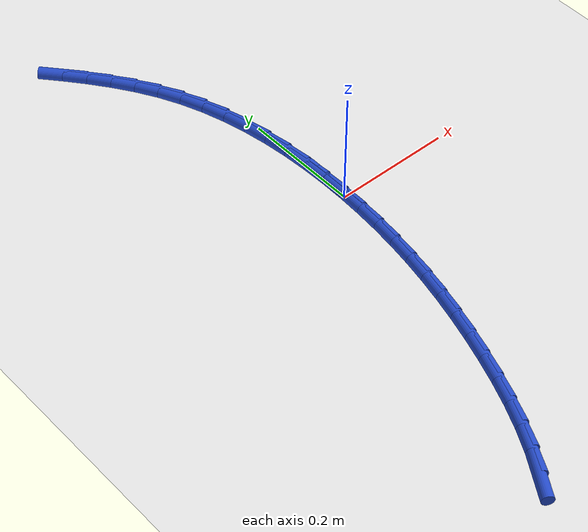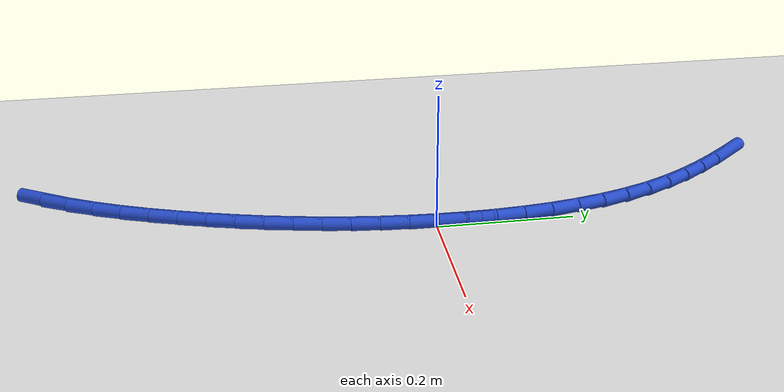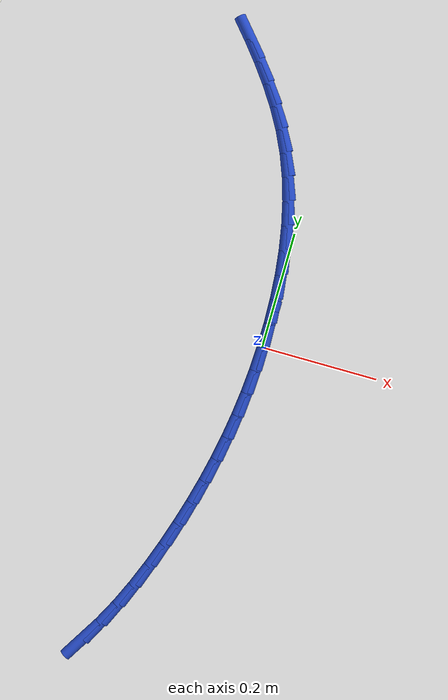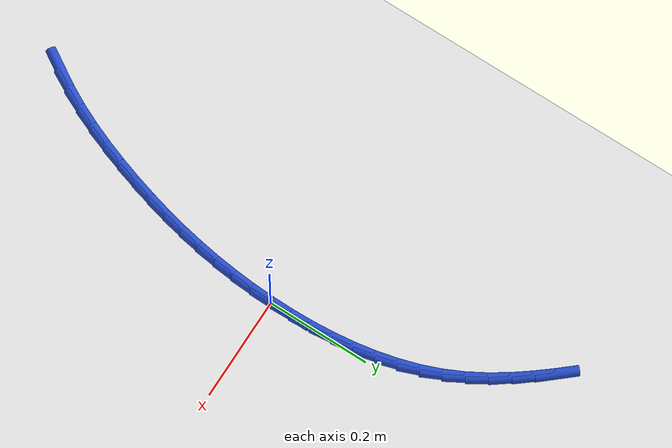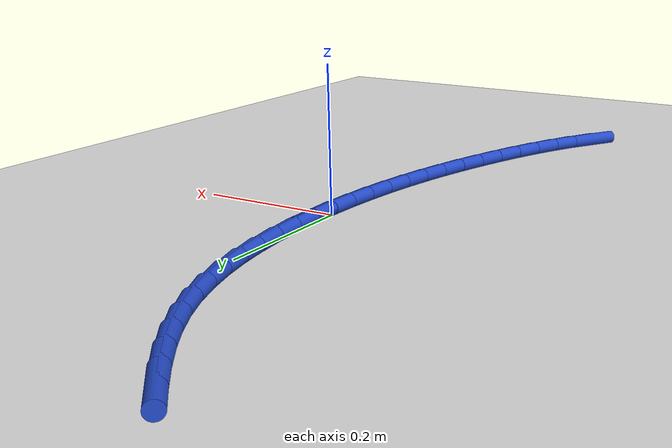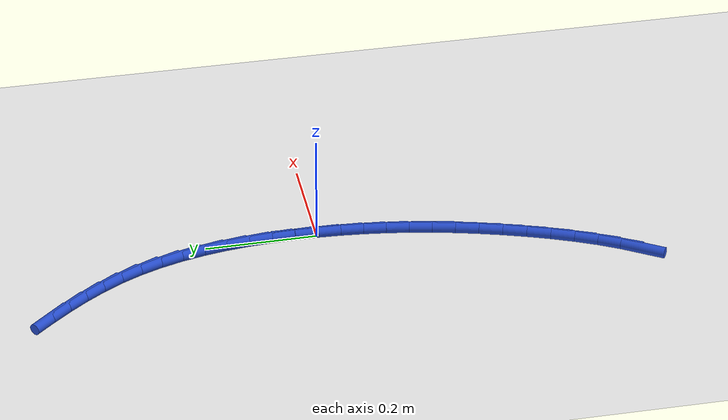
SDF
<sdf version="1.6">
 <world name="default">
  <model name="ground_plane">
   <static>1</static>
   <link name="link">
    <collision name="collision">
     <geometry><plane><normal>0 0 1</normal><size>100 100</size></plane></geometry>
     <surface><friction><ode><mu>100</mu><mu2>50</mu2></ode></friction></surface>
    </collision>
    <visual name="visual">
     <cast_shadows>0</cast_shadows>
     <geometry><plane><normal>0 0 1</normal><size>100 100</size></plane></geometry>
     <material>
      <script><uri>file://media/materials/scripts/gazebo.material</uri><name>Gazebo/WhiteGlow</name></script>
     </material>
    </visual>
   </link>
  </model>
  <model name="line">
   <link name="link_0">
    <pose>1.5612511283791264e-17 0.0 0.01 0 1.57 1.5627371519065834</pose>
    <collision name="collision">
     <geometry><cylinder><radius>0.01</radius><length>0.08</length></cylinder></geometry>
    </collision>
    <visual name="visual">
     <material>
      <script><name>Gazebo/Blue</name><uri>file://media/materials/scripts/gazebo.material</uri></script>
     </material>
     <geometry><cylinder><radius>0.01</radius><length>0.08</length></cylinder></geometry>
    </visual>
   </link>
   <link name="link_1">
    <pose>0.00033549583603010875 0.04162815389038797 0.01 0 1.57 -1.539648303344761</pose>
    <collision name="collision">
     <geometry><cylinder><radius>0.01</radius><length>0.08</length></cylinder></geometry>
    </collision>
    <visual name="visual">
     <material>
      <script><name>Gazebo/Blue</name><uri>file://media/materials/scripts/gazebo.material</uri></script>
     </material>
     <geometry><cylinder><radius>0.01</radius><length>0.08</length></cylinder></geometry>
    </visual>
   </link>
   <link name="link_2">
    <pose>-0.0009685561631910054 0.08348089757692105 0.01 0 1.57 -1.4964898001802398</pose>
    <collision name="collision">
     <geometry><cylinder><radius>0.01</radius><length>0.08</length></cylinder></geometry>
    </collision>
    <visual name="visual">
     <material>
      <script><name>Gazebo/Blue</name><uri>file://media/materials/scripts/gazebo.material</uri></script>
     </material>
     <geometry><cylinder><radius>0.01</radius><length>0.08</length></cylinder></geometry>
    </visual>
   </link>
   <link name="link_3">
    <pose>-0.0040824264526208645 0.12530948631201214 0.01 0 1.57 -1.4488233210434356</pose>
    <collision name="collision">
     <geometry><cylinder><radius>0.01</radius><length>0.08</length></cylinder></geometry>
    </collision>
    <visual name="visual">
     <material>
      <script><name>Gazebo/Blue</name><uri>file://media/materials/scripts/gazebo.material</uri></script>
     </material>
     <geometry><cylinder><radius>0.01</radius><length>0.08</length></cylinder></geometry>
    </visual>
   </link>
   <link name="link_4">
    <pose>-0.009176385487217007 0.1668651753480741 0.01 0 1.57 -1.3960528426665788</pose>
    <collision name="collision">
     <geometry><cylinder><radius>0.01</radius><length>0.08</length></cylinder></geometry>
    </collision>
    <visual name="visual">
     <material>
      <script><name>Gazebo/Blue</name><uri>file://media/materials/scripts/gazebo.material</uri></script>
     </material>
     <geometry><cylinder><radius>0.01</radius><length>0.08</length></cylinder></geometry>
    </visual>
   </link>
   <link name="link_5">
    <pose>-0.016420703721936963 0.20789921993751986 0.01 0 1.57 -1.337561754423011</pose>
    <collision name="collision">
     <geometry><cylinder><radius>0.01</radius><length>0.08</length></cylinder></geometry>
    </collision>
    <visual name="visual">
     <material>
      <script><name>Gazebo/Blue</name><uri>file://media/materials/scripts/gazebo.material</uri></script>
     </material>
     <geometry><cylinder><radius>0.01</radius><length>0.08</length></cylinder></geometry>
    </visual>
   </link>
   <link name="link_6">
    <pose>-0.02598565161173827 0.2481628753327622 0.01 0 1.57 -1.2727487935232362</pose>
    <collision name="collision">
     <geometry><cylinder><radius>0.01</radius><length>0.08</length></cylinder></geometry>
    </collision>
    <visual name="visual">
     <material>
      <script><name>Gazebo/Blue</name><uri>file://media/materials/scripts/gazebo.material</uri></script>
     </material>
     <geometry><cylinder><radius>0.01</radius><length>0.08</length></cylinder></geometry>
    </visual>
   </link>
   <link name="link_7">
    <pose>-0.03804149961157846 0.2874073967862142 0.01 0 1.57 -1.2010875529650897</pose>
    <collision name="collision">
     <geometry><cylinder><radius>0.01</radius><length>0.08</length></cylinder></geometry>
    </collision>
    <visual name="visual">
     <material>
      <script><name>Gazebo/Blue</name><uri>file://media/materials/scripts/gazebo.material</uri></script>
     </material>
     <geometry><cylinder><radius>0.01</radius><length>0.08</length></cylinder></geometry>
    </visual>
   </link>
   <link name="link_8">
    <pose>-0.0527585181764151 0.3253840395502886 0.01 0 1.57 -1.1226983405321613</pose>
    <collision name="collision">
     <geometry><cylinder><radius>0.01</radius><length>0.08</length></cylinder></geometry>
    </collision>
    <visual name="visual">
     <material>
      <script><name>Gazebo/Blue</name><uri>file://media/materials/scripts/gazebo.material</uri></script>
     </material>
     <geometry><cylinder><radius>0.01</radius><length>0.08</length></cylinder></geometry>
    </visual>
   </link>
   <link name="link_9">
    <pose>-0.0702916352839732 0.3618573117727762 0.01 0 1.57 -1.0466355568949675</pose>
    <collision name="collision">
     <geometry><cylinder><radius>0.01</radius><length>0.08</length></cylinder></geometry>
    </collision>
    <visual name="visual">
     <material>
      <script><name>Gazebo/Blue</name><uri>file://media/materials/scripts/gazebo.material</uri></script>
     </material>
     <geometry><cylinder><radius>0.01</radius><length>0.08</length></cylinder></geometry>
    </visual>
   </link>
   <link name="link_10">
    <pose>-0.09051286786912605 0.39683610133202285 0.01 0 1.57 -0.9815511545880734</pose>
    <collision name="collision">
     <geometry><cylinder><radius>0.01</radius><length>0.08</length></cylinder></geometry>
    </collision>
    <visual name="visual">
     <material>
      <script><name>Gazebo/Blue</name><uri>file://media/materials/scripts/gazebo.material</uri></script>
     </material>
     <geometry><cylinder><radius>0.01</radius><length>0.08</length></cylinder></geometry>
    </visual>
   </link>
   <link name="link_11">
    <pose>-0.11304546967218501 0.43054417878414664 0.01 0 1.57 -0.9281302438210409</pose>
    <collision name="collision">
     <geometry><cylinder><radius>0.01</radius><length>0.08</length></cylinder></geometry>
    </collision>
    <visual name="visual">
     <material>
      <script><name>Gazebo/Blue</name><uri>file://media/materials/scripts/gazebo.material</uri></script>
     </material>
     <geometry><cylinder><radius>0.01</radius><length>0.08</length></cylinder></geometry>
    </visual>
   </link>
   <link name="link_12">
    <pose>-0.13750421696907697 0.4632126375541121 0.01 0 1.57 -0.8863381538720599</pose>
    <collision name="collision">
     <geometry><cylinder><radius>0.01</radius><length>0.08</length></cylinder></geometry>
    </collision>
    <visual name="visual">
     <material>
      <script><name>Gazebo/Blue</name><uri>file://media/materials/scripts/gazebo.material</uri></script>
     </material>
     <geometry><cylinder><radius>0.01</radius><length>0.08</length></cylinder></geometry>
    </visual>
   </link>
   <link name="link_13">
    <pose>-0.16350388603572893 0.49507257106688396 0.01 0 1.57 -0.8559054106602573</pose>
    <collision name="collision">
     <geometry><cylinder><radius>0.01</radius><length>0.08</length></cylinder></geometry>
    </collision>
    <visual name="visual">
     <material>
      <script><name>Gazebo/Blue</name><uri>file://media/materials/scripts/gazebo.material</uri></script>
     </material>
     <geometry><cylinder><radius>0.01</radius><length>0.08</length></cylinder></geometry>
    </visual>
   </link>
   <link name="link_166">
    <pose>-0.15764988012076647 -0.5565780891741993 0.01 0 1.57 1.0183338912129576</pose>
    <collision name="collision">
     <geometry><cylinder><radius>0.01</radius><length>0.08</length></cylinder></geometry>
    </collision>
    <visual name="visual">
     <material>
      <script><name>Gazebo/Blue</name><uri>file://media/materials/scripts/gazebo.material</uri></script>
     </material>
     <geometry><cylinder><radius>0.01</radius><length>0.08</length></cylinder></geometry>
    </visual>
   </link>
   <link name="link_167">
    <pose>-0.13585304131474724 -0.5212222168888004 0.01 0 1.57 1.0852599736701192</pose>
    <collision name="collision">
     <geometry><cylinder><radius>0.01</radius><length>0.08</length></cylinder></geometry>
    </collision>
    <visual name="visual">
     <material>
      <script><name>Gazebo/Blue</name><uri>file://media/materials/scripts/gazebo.material</uri></script>
     </material>
     <geometry><cylinder><radius>0.01</radius><length>0.08</length></cylinder></geometry>
    </visual>
   </link>
   <link name="link_168">
    <pose>-0.11611062027643874 -0.4838077535075102 0.01 0 1.57 1.1413424869747353</pose>
    <collision name="collision">
     <geometry><cylinder><radius>0.01</radius><length>0.08</length></cylinder></geometry>
    </collision>
    <visual name="visual">
     <material>
      <script><name>Gazebo/Blue</name><uri>file://media/materials/scripts/gazebo.material</uri></script>
     </material>
     <geometry><cylinder><radius>0.01</radius><length>0.08</length></cylinder></geometry>
    </visual>
   </link>
   <link name="link_169">
    <pose>-0.09826740195748304 -0.44484537174377603 0.01 0 1.57 1.1881499630543153</pose>
    <collision name="collision">
     <geometry><cylinder><radius>0.01</radius><length>0.08</length></cylinder></geometry>
    </collision>
    <visual name="visual">
     <material>
      <script><name>Gazebo/Blue</name><uri>file://media/materials/scripts/gazebo.material</uri></script>
     </material>
     <geometry><cylinder><radius>0.01</radius><length>0.08</length></cylinder></geometry>
    </visual>
   </link>
   <link name="link_170">
    <pose>-0.08216817130952192 -0.404845744311045 0.01 0 1.57 1.2269669559607816</pose>
    <collision name="collision">
     <geometry><cylinder><radius>0.01</radius><length>0.08</length></cylinder></geometry>
    </collision>
    <visual name="visual">
     <material>
      <script><name>Gazebo/Blue</name><uri>file://media/materials/scripts/gazebo.material</uri></script>
     </material>
     <geometry><cylinder><radius>0.01</radius><length>0.08</length></cylinder></geometry>
    </visual>
   </link>
   <link name="link_171">
    <pose>-0.06765771328419805 -0.36431954392276633 0.01 0 1.57 1.2589044806969178</pose>
    <collision name="collision">
     <geometry><cylinder><radius>0.01</radius><length>0.08</length></cylinder></geometry>
    </collision>
    <visual name="visual">
     <material>
      <script><name>Gazebo/Blue</name><uri>file://media/materials/scripts/gazebo.material</uri></script>
     </material>
     <geometry><cylinder><radius>0.01</radius><length>0.08</length></cylinder></geometry>
    </visual>
   </link>
   <link name="link_172">
    <pose>-0.054583400057776746 -0.32376831722347493 0.01 0 1.57 1.288183372163451</pose>
    <collision name="collision">
     <geometry><cylinder><radius>0.01</radius><length>0.08</length></cylinder></geometry>
    </collision>
    <visual name="visual">
     <material>
      <script><name>Gazebo/Blue</name><uri>file://media/materials/scripts/gazebo.material</uri></script>
     </material>
     <geometry><cylinder><radius>0.01</radius><length>0.08</length></cylinder></geometry>
    </visual>
   </link>
   <link name="link_173">
    <pose>-0.04286852347226676 -0.283425814975196 0.01 0 1.57 1.3189317259924247</pose>
    <collision name="collision">
     <geometry><cylinder><radius>0.01</radius><length>0.08</length></cylinder></geometry>
    </collision>
    <visual name="visual">
     <material>
      <script><name>Gazebo/Blue</name><uri>file://media/materials/scripts/gazebo.material</uri></script>
     </material>
     <geometry><cylinder><radius>0.01</radius><length>0.08</length></cylinder></geometry>
    </visual>
   </link>
   <link name="link_174">
    <pose>-0.03252271656595446 -0.2432212315825477 0.01 0 1.57 1.3511945742643985</pose>
    <collision name="collision">
     <geometry><cylinder><radius>0.01</radius><length>0.08</length></cylinder></geometry>
    </collision>
    <visual name="visual">
     <material>
      <script><name>Gazebo/Blue</name><uri>file://media/materials/scripts/gazebo.material</uri></script>
     </material>
     <geometry><cylinder><radius>0.01</radius><length>0.08</length></cylinder></geometry>
    </visual>
   </link>
   <link name="link_175">
    <pose>-0.02356029472471072 -0.20306724513133556 0.01 0 1.57 1.384752303201363</pose>
    <collision name="collision">
     <geometry><cylinder><radius>0.01</radius><length>0.08</length></cylinder></geometry>
    </collision>
    <visual name="visual">
     <material>
      <script><name>Gazebo/Blue</name><uri>file://media/materials/scripts/gazebo.material</uri></script>
     </material>
     <geometry><cylinder><radius>0.01</radius><length>0.08</length></cylinder></geometry>
    </visual>
   </link>
   <link name="link_176">
    <pose>-0.015995573334406224 -0.1628765337073639 0.01 0 1.57 1.4193482426146153</pose>
    <collision name="collision">
     <geometry><cylinder><radius>0.01</radius><length>0.08</length></cylinder></geometry>
    </collision>
    <visual name="visual">
     <material>
      <script><name>Gazebo/Blue</name><uri>file://media/materials/scripts/gazebo.material</uri></script>
     </material>
     <geometry><cylinder><radius>0.01</radius><length>0.08</length></cylinder></geometry>
    </visual>
   </link>
   <link name="link_177">
    <pose>-0.009842867780912154 -0.12256177539643975 0.01 0 1.57 1.4546954480309104</pose>
    <collision name="collision">
     <geometry><cylinder><radius>0.01</radius><length>0.08</length></cylinder></geometry>
    </collision>
    <visual name="visual">
     <material>
      <script><name>Gazebo/Blue</name><uri>file://media/materials/scripts/gazebo.material</uri></script>
     </material>
     <geometry><cylinder><radius>0.01</radius><length>0.08</length></cylinder></geometry>
    </visual>
   </link>
   <link name="link_178">
    <pose>-0.005116493450099187 -0.08203564828436752 0.01 0 1.57 1.4904858492065363</pose>
    <collision name="collision">
     <geometry><cylinder><radius>0.01</radius><length>0.08</length></cylinder></geometry>
    </collision>
    <visual name="visual">
     <material>
      <script><name>Gazebo/Blue</name><uri>file://media/materials/scripts/gazebo.material</uri></script>
     </material>
     <geometry><cylinder><radius>0.01</radius><length>0.08</length></cylinder></geometry>
    </visual>
   </link>
   <link name="link_179">
    <pose>-0.0018307657278381776 -0.04121083045695249 0.01 0 1.57 1.5264011331733467</pose>
    <collision name="collision">
     <geometry><cylinder><radius>0.01</radius><length>0.08</length></cylinder></geometry>
    </collision>
    <visual name="visual">
     <material>
      <script><name>Gazebo/Blue</name><uri>file://media/materials/scripts/gazebo.material</uri></script>
     </material>
     <geometry><cylinder><radius>0.01</radius><length>0.08</length></cylinder></geometry>
    </visual>
   </link>
   <link name="link_180">
    <pose>2.3418766925686896e-17 6.938893903907228e-17 0.01 0 1.57 1.562124465764603</pose>
    <collision name="collision">
     <geometry><cylinder><radius>0.01</radius><length>0.08</length></cylinder></geometry>
    </collision>
    <visual name="visual">
     <material>
      <script><name>Gazebo/Blue</name><uri>file://media/materials/scripts/gazebo.material</uri></script>
     </material>
     <geometry><cylinder><radius>0.01</radius><length>0.08</length></cylinder></geometry>
    </visual>
   </link>
   <link name="link_181">
    <pose>0.00036148834754456526 0.04168416500068483 0.01 0 1.57 1.5621244657646027</pose>
    <collision name="collision">
     <geometry><cylinder><radius>0.01</radius><length>0.08</length></cylinder></geometry>
    </collision>
    <visual name="visual">
     <material>
      <script><name>Gazebo/Blue</name><uri>file://media/materials/scripts/gazebo.material</uri></script>
     </material>
     <geometry><cylinder><radius>0.01</radius><length>0.08</length></cylinder></geometry>
    </visual>
   </link>
  </model>
 </world>
</sdf>
